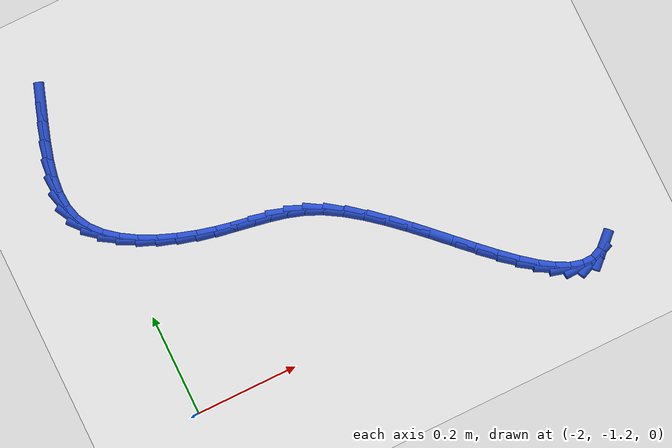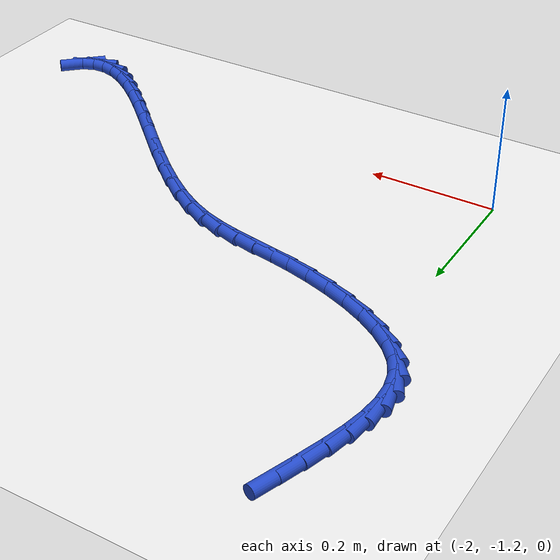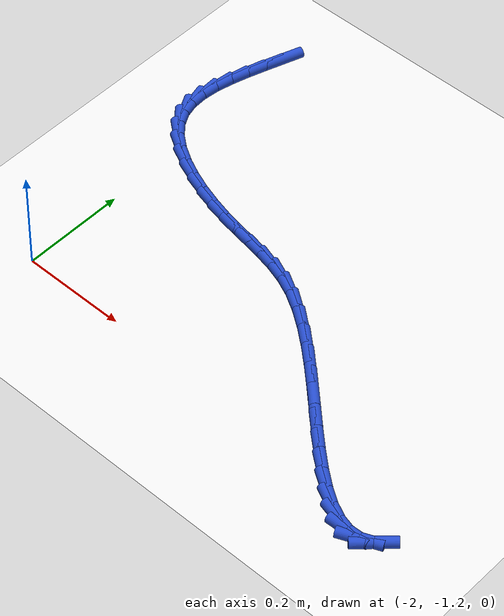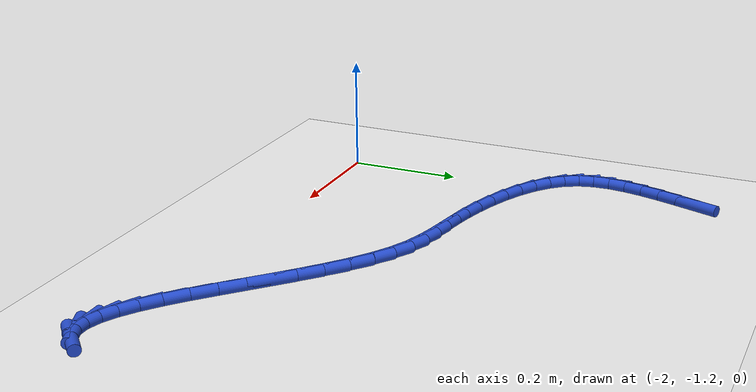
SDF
<sdf version="1.6">
 <world name="default">
  <model name="ground_plane">
   <static>1</static>
   <link name="link">
    <collision name="collision">
     <geometry><plane><normal>0 0 1</normal><size>100 100</size></plane></geometry>
     <surface><friction><ode><mu>100</mu><mu2>50</mu2></ode></friction></surface>
    </collision>
    <visual name="visual">
     <cast_shadows>0</cast_shadows>
     <geometry><plane><normal>0 0 1</normal><size>100 100</size></plane></geometry>
     <material>
      <script><uri>file://media/materials/scripts/gazebo.material</uri><name>Gazebo/WhiteGlow</name></script>
     </material>
    </visual>
   </link>
  </model>
  <model name="line">
   <link name="link_129">
    <pose>-2.015394017061244 -0.5467655982230155 0.01 0 1.57 1.2388100657503465</pose>
    <collision name="collision">
     <geometry><cylinder><radius>0.01</radius><length>0.08</length></cylinder></geometry>
    </collision>
    <visual name="visual">
     <material>
      <script><name>Gazebo/Blue</name><uri>file://media/materials/scripts/gazebo.material</uri></script>
     </material>
     <geometry><cylinder><radius>0.01</radius><length>0.08</length></cylinder></geometry>
    </visual>
   </link>
   <link name="link_130">
    <pose>-2.0276539462757364 -0.582327840274465 0.01 0 1.57 1.2535763853824529</pose>
    <collision name="collision">
     <geometry><cylinder><radius>0.01</radius><length>0.08</length></cylinder></geometry>
    </collision>
    <visual name="visual">
     <material>
      <script><name>Gazebo/Blue</name><uri>file://media/materials/scripts/gazebo.material</uri></script>
     </material>
     <geometry><cylinder><radius>0.01</radius><length>0.08</length></cylinder></geometry>
    </visual>
   </link>
   <link name="link_131">
    <pose>-2.0390904583832477 -0.6171626639142007 0.01 0 1.57 1.2927875573959584</pose>
    <collision name="collision">
     <geometry><cylinder><radius>0.01</radius><length>0.08</length></cylinder></geometry>
    </collision>
    <visual name="visual">
     <material>
      <script><name>Gazebo/Blue</name><uri>file://media/materials/scripts/gazebo.material</uri></script>
     </material>
     <geometry><cylinder><radius>0.01</radius><length>0.08</length></cylinder></geometry>
    </visual>
   </link>
   <link name="link_132">
    <pose>-2.0487517149284566 -0.6510143370321106 0.01 0 1.57 1.361295211416397</pose>
    <collision name="collision">
     <geometry><cylinder><radius>0.01</radius><length>0.08</length></cylinder></geometry>
    </collision>
    <visual name="visual">
     <material>
      <script><name>Gazebo/Blue</name><uri>file://media/materials/scripts/gazebo.material</uri></script>
     </material>
     <geometry><cylinder><radius>0.01</radius><length>0.08</length></cylinder></geometry>
    </visual>
   </link>
   <link name="link_133">
    <pose>-2.055685877456042 -0.6836271275180856 0.01 0 1.57 1.4665667768413608</pose>
    <collision name="collision">
     <geometry><cylinder><radius>0.01</radius><length>0.08</length></cylinder></geometry>
    </collision>
    <visual name="visual">
     <material>
      <script><name>Gazebo/Blue</name><uri>file://media/materials/scripts/gazebo.material</uri></script>
     </material>
     <geometry><cylinder><radius>0.01</radius><length>0.08</length></cylinder></geometry>
    </visual>
   </link>
   <link name="link_134">
    <pose>-2.058941107510682 -0.7147453032620155 0.01 0 1.57 -1.5239921759350812</pose>
    <collision name="collision">
     <geometry><cylinder><radius>0.01</radius><length>0.08</length></cylinder></geometry>
    </collision>
    <visual name="visual">
     <material>
      <script><name>Gazebo/Blue</name><uri>file://media/materials/scripts/gazebo.material</uri></script>
     </material>
     <geometry><cylinder><radius>0.01</radius><length>0.08</length></cylinder></geometry>
    </visual>
   </link>
   <link name="link_135">
    <pose>-2.0575655666370554 -0.744113132153791 0.01 0 1.57 -1.3217727521539409</pose>
    <collision name="collision">
     <geometry><cylinder><radius>0.01</radius><length>0.08</length></cylinder></geometry>
    </collision>
    <visual name="visual">
     <material>
      <script><name>Gazebo/Blue</name><uri>file://media/materials/scripts/gazebo.material</uri></script>
     </material>
     <geometry><cylinder><radius>0.01</radius><length>0.08</length></cylinder></geometry>
    </visual>
   </link>
   <link name="link_136">
    <pose>-2.0506074163798402 -0.7714748820833008 0.01 0 1.57 -1.0790485131635144</pose>
    <collision name="collision">
     <geometry><cylinder><radius>0.01</radius><length>0.08</length></cylinder></geometry>
    </collision>
    <visual name="visual">
     <material>
      <script><name>Gazebo/Blue</name><uri>file://media/materials/scripts/gazebo.material</uri></script>
     </material>
     <geometry><cylinder><radius>0.01</radius><length>0.08</length></cylinder></geometry>
    </visual>
   </link>
   <link name="link_137">
    <pose>-2.037159606729046 -0.7965811610376143 0.01 0 1.57 -0.852919830712147</pose>
    <collision name="collision">
     <geometry><cylinder><radius>0.01</radius><length>0.08</length></cylinder></geometry>
    </collision>
    <visual name="visual">
     <material>
      <script><name>Gazebo/Blue</name><uri>file://media/materials/scripts/gazebo.material</uri></script>
     </material>
     <geometry><cylinder><radius>0.01</radius><length>0.08</length></cylinder></geometry>
    </visual>
   </link>
   <link name="link_138">
    <pose>-2.01729966852689 -0.8193219508587666 0.01 0 1.57 -0.679877926534927</pose>
    <collision name="collision">
     <geometry><cylinder><radius>0.01</radius><length>0.08</length></cylinder></geometry>
    </collision>
    <visual name="visual">
     <material>
      <script><name>Gazebo/Blue</name><uri>file://media/materials/scripts/gazebo.material</uri></script>
     </material>
     <geometry><cylinder><radius>0.01</radius><length>0.08</length></cylinder></geometry>
    </visual>
   </link>
   <link name="link_139">
    <pose>-1.99206505190347 -0.8397231162381376 0.01 0 1.57 -0.5496758269864429</pose>
    <collision name="collision">
     <geometry><cylinder><radius>0.01</radius><length>0.08</length></cylinder></geometry>
    </collision>
    <visual name="visual">
     <material>
      <script><name>Gazebo/Blue</name><uri>file://media/materials/scripts/gazebo.material</uri></script>
     </material>
     <geometry><cylinder><radius>0.01</radius><length>0.08</length></cylinder></geometry>
    </visual>
   </link>
   <link name="link_140">
    <pose>-1.962533062126395 -0.8578161636223183 0.01 0 1.57 -0.4498858314161071</pose>
    <collision name="collision">
     <geometry><cylinder><radius>0.01</radius><length>0.08</length></cylinder></geometry>
    </collision>
    <visual name="visual">
     <material>
      <script><name>Gazebo/Blue</name><uri>file://media/materials/scripts/gazebo.material</uri></script>
     </material>
     <geometry><cylinder><radius>0.01</radius><length>0.08</length></cylinder></geometry>
    </visual>
   </link>
   <link name="link_141">
    <pose>-1.9297810044632704 -0.8736325994579003 0.01 0 1.57 -0.370919239391351</pose>
    <collision name="collision">
     <geometry><cylinder><radius>0.01</radius><length>0.08</length></cylinder></geometry>
    </collision>
    <visual name="visual">
     <material>
      <script><name>Gazebo/Blue</name><uri>file://media/materials/scripts/gazebo.material</uri></script>
     </material>
     <geometry><cylinder><radius>0.01</radius><length>0.08</length></cylinder></geometry>
    </visual>
   </link>
   <link name="link_142">
    <pose>-1.894886184181705 -0.8872039301914757 0.01 0 1.57 -0.30592577595828996</pose>
    <collision name="collision">
     <geometry><cylinder><radius>0.01</radius><length>0.08</length></cylinder></geometry>
    </collision>
    <visual name="visual">
     <material>
      <script><name>Gazebo/Blue</name><uri>file://media/materials/scripts/gazebo.material</uri></script>
     </material>
     <geometry><cylinder><radius>0.01</radius><length>0.08</length></cylinder></geometry>
    </visual>
   </link>
   <link name="link_143">
    <pose>-1.858925906549305 -0.8985616622696361 0.01 0 1.57 -0.24990856319659605</pose>
    <collision name="collision">
     <geometry><cylinder><radius>0.01</radius><length>0.08</length></cylinder></geometry>
    </collision>
    <visual name="visual">
     <material>
      <script><name>Gazebo/Blue</name><uri>file://media/materials/scripts/gazebo.material</uri></script>
     </material>
     <geometry><cylinder><radius>0.01</radius><length>0.08</length></cylinder></geometry>
    </visual>
   </link>
   <link name="link_144">
    <pose>-1.82297747683368 -0.9077373021389733 0.01 0 1.57 -0.2001688125739031</pose>
    <collision name="collision">
     <geometry><cylinder><radius>0.01</radius><length>0.08</length></cylinder></geometry>
    </collision>
    <visual name="visual">
     <material>
      <script><name>Gazebo/Blue</name><uri>file://media/materials/scripts/gazebo.material</uri></script>
     </material>
     <geometry><cylinder><radius>0.01</radius><length>0.08</length></cylinder></geometry>
    </visual>
   </link>
   <link name="link_145">
    <pose>-1.7880538158559753 -0.9148228167153437 0.01 0 1.57 -0.171678112381296</pose>
    <collision name="collision">
     <geometry><cylinder><radius>0.01</radius><length>0.08</length></cylinder></geometry>
    </collision>
    <visual name="visual">
     <material>
      <script><name>Gazebo/Blue</name><uri>file://media/materials/scripts/gazebo.material</uri></script>
     </material>
     <geometry><cylinder><radius>0.01</radius><length>0.08</length></cylinder></geometry>
    </visual>
   </link>
   <link name="link_146">
    <pose>-1.754365181679546 -0.9206639165540295 0.01 0 1.57 -0.1796323500471926</pose>
    <collision name="collision">
     <geometry><cylinder><radius>0.01</radius><length>0.08</length></cylinder></geometry>
    </collision>
    <visual name="visual">
     <material>
      <script><name>Gazebo/Blue</name><uri>file://media/materials/scripts/gazebo.material</uri></script>
     </material>
     <geometry><cylinder><radius>0.01</radius><length>0.08</length></cylinder></geometry>
    </visual>
   </link>
   <link name="link_147">
    <pose>-1.7215770337601377 -0.9266179074989516 0.01 0 1.57 -0.22667044608490852</pose>
    <collision name="collision">
     <geometry><cylinder><radius>0.01</radius><length>0.08</length></cylinder></geometry>
    </collision>
    <visual name="visual">
     <material>
      <script><name>Gazebo/Blue</name><uri>file://media/materials/scripts/gazebo.material</uri></script>
     </material>
     <geometry><cylinder><radius>0.01</radius><length>0.08</length></cylinder></geometry>
    </visual>
   </link>
   <link name="link_148">
    <pose>-1.6893444601318697 -0.9340518347185568 0.01 0 1.57 -0.3106628795604437</pose>
    <collision name="collision">
     <geometry><cylinder><radius>0.01</radius><length>0.08</length></cylinder></geometry>
    </collision>
    <visual name="visual">
     <material>
      <script><name>Gazebo/Blue</name><uri>file://media/materials/scripts/gazebo.material</uri></script>
     </material>
     <geometry><cylinder><radius>0.01</radius><length>0.08</length></cylinder></geometry>
    </visual>
   </link>
   <link name="link_149">
    <pose>-1.6573225488288623 -0.944332743381291 0.01 0 1.57 -0.4234268595129013</pose>
    <collision name="collision">
     <geometry><cylinder><radius>0.01</radius><length>0.08</length></cylinder></geometry>
    </collision>
    <visual name="visual">
     <material>
      <script><name>Gazebo/Blue</name><uri>file://media/materials/scripts/gazebo.material</uri></script>
     </material>
     <geometry><cylinder><radius>0.01</radius><length>0.08</length></cylinder></geometry>
    </visual>
   </link>
   <link name="link_150">
    <pose>-1.625166995280515 -0.9588249018390486 0.01 0 1.57 -0.5387557036182694</pose>
    <collision name="collision">
     <geometry><cylinder><radius>0.01</radius><length>0.08</length></cylinder></geometry>
    </collision>
    <visual name="visual">
     <material>
      <script><name>Gazebo/Blue</name><uri>file://media/materials/scripts/gazebo.material</uri></script>
     </material>
     <geometry><cylinder><radius>0.01</radius><length>0.08</length></cylinder></geometry>
    </visual>
   </link>
   <link name="link_151">
    <pose>-1.5926747513777268 -0.9782467991736553 0.01 0 1.57 -0.6250024165375869</pose>
    <collision name="collision">
     <geometry><cylinder><radius>0.01</radius><length>0.08</length></cylinder></geometry>
    </collision>
    <visual name="visual">
     <material>
      <script><name>Gazebo/Blue</name><uri>file://media/materials/scripts/gazebo.material</uri></script>
     </material>
     <geometry><cylinder><radius>0.01</radius><length>0.08</length></cylinder></geometry>
    </visual>
   </link>
   <link name="link_152">
    <pose>-1.559964296556695 -1.0018470035776303 0.01 0 1.57 -0.686009488860732</pose>
    <collision name="collision">
     <geometry><cylinder><radius>0.01</radius><length>0.08</length></cylinder></geometry>
    </collision>
    <visual name="visual">
     <material>
      <script><name>Gazebo/Blue</name><uri>file://media/materials/scripts/gazebo.material</uri></script>
     </material>
     <geometry><cylinder><radius>0.01</radius><length>0.08</length></cylinder></geometry>
    </visual>
   </link>
   <link name="link_153">
    <pose>-1.5271986190208058 -1.0286706034247257 0.01 0 1.57 -0.7277160099524845</pose>
    <collision name="collision">
     <geometry><cylinder><radius>0.01</radius><length>0.08</length></cylinder></geometry>
    </collision>
    <visual name="visual">
     <material>
      <script><name>Gazebo/Blue</name><uri>file://media/materials/scripts/gazebo.material</uri></script>
     </material>
     <geometry><cylinder><radius>0.01</radius><length>0.08</length></cylinder></geometry>
    </visual>
   </link>
   <link name="link_154">
    <pose>-1.4945407069734424 -1.0577626870886943 0.01 0 1.57 -0.7538524332699768</pose>
    <collision name="collision">
     <geometry><cylinder><radius>0.01</radius><length>0.08</length></cylinder></geometry>
    </collision>
    <visual name="visual">
     <material>
      <script><name>Gazebo/Blue</name><uri>file://media/materials/scripts/gazebo.material</uri></script>
     </material>
     <geometry><cylinder><radius>0.01</radius><length>0.08</length></cylinder></geometry>
    </visual>
   </link>
   <link name="link_155">
    <pose>-1.4621535486179889 -1.0881683429432882 0.01 0 1.57 -0.7664408838920721</pose>
    <collision name="collision">
     <geometry><cylinder><radius>0.01</radius><length>0.08</length></cylinder></geometry>
    </collision>
    <visual name="visual">
     <material>
      <script><name>Gazebo/Blue</name><uri>file://media/materials/scripts/gazebo.material</uri></script>
     </material>
     <geometry><cylinder><radius>0.01</radius><length>0.08</length></cylinder></geometry>
    </visual>
   </link>
   <link name="link_156">
    <pose>-1.4302001321578288 -1.1189326593622604 0.01 0 1.57 -0.7660811710591149</pose>
    <collision name="collision">
     <geometry><cylinder><radius>0.01</radius><length>0.08</length></cylinder></geometry>
    </collision>
    <visual name="visual">
     <material>
      <script><name>Gazebo/Blue</name><uri>file://media/materials/scripts/gazebo.material</uri></script>
     </material>
     <geometry><cylinder><radius>0.01</radius><length>0.08</length></cylinder></geometry>
    </visual>
   </link>
   <link name="link_157">
    <pose>-1.3988434457963488 -1.1491007247193625 0.01 0 1.57 -0.7519714031314978</pose>
    <collision name="collision">
     <geometry><cylinder><radius>0.01</radius><length>0.08</length></cylinder></geometry>
    </collision>
    <visual name="visual">
     <material>
      <script><name>Gazebo/Blue</name><uri>file://media/materials/scripts/gazebo.material</uri></script>
     </material>
     <geometry><cylinder><radius>0.01</radius><length>0.08</length></cylinder></geometry>
    </visual>
   </link>
   <link name="link_158">
    <pose>-1.3682464777369319 -1.177717627388348 0.01 0 1.57 -0.7216069548132437</pose>
    <collision name="collision">
     <geometry><cylinder><radius>0.01</radius><length>0.08</length></cylinder></geometry>
    </collision>
    <visual name="visual">
     <material>
      <script><name>Gazebo/Blue</name><uri>file://media/materials/scripts/gazebo.material</uri></script>
     </material>
     <geometry><cylinder><radius>0.01</radius><length>0.08</length></cylinder></geometry>
    </visual>
   </link>
   <link name="link_159">
    <pose>-1.3385722161829625 -1.2038284557429686 0.01 0 1.57 -0.6700092618455692</pose>
    <collision name="collision">
     <geometry><cylinder><radius>0.01</radius><length>0.08</length></cylinder></geometry>
    </collision>
    <visual name="visual">
     <material>
      <script><name>Gazebo/Blue</name><uri>file://media/materials/scripts/gazebo.material</uri></script>
     </material>
     <geometry><cylinder><radius>0.01</radius><length>0.08</length></cylinder></geometry>
    </visual>
   </link>
   <link name="link_160">
    <pose>-1.3099836493378247 -1.226478298156978 0.01 0 1.57 -0.5881888397971498</pose>
    <collision name="collision">
     <geometry><cylinder><radius>0.01</radius><length>0.08</length></cylinder></geometry>
    </collision>
    <visual name="visual">
     <material>
      <script><name>Gazebo/Blue</name><uri>file://media/materials/scripts/gazebo.material</uri></script>
     </material>
     <geometry><cylinder><radius>0.01</radius><length>0.08</length></cylinder></geometry>
    </visual>
   </link>
   <link name="link_161">
    <pose>-1.2826437654049039 -1.2447122430041269 0.01 0 1.57 -0.4605273645206094</pose>
    <collision name="collision">
     <geometry><cylinder><radius>0.01</radius><length>0.08</length></cylinder></geometry>
    </collision>
    <visual name="visual">
     <material>
      <script><name>Gazebo/Blue</name><uri>file://media/materials/scripts/gazebo.material</uri></script>
     </material>
     <geometry><cylinder><radius>0.01</radius><length>0.08</length></cylinder></geometry>
    </visual>
   </link>
   <link name="link_162">
    <pose>-1.2567155525875842 -1.2575753786581694 0.01 0 1.57 -0.2622552287441288</pose>
    <collision name="collision">
     <geometry><cylinder><radius>0.01</radius><length>0.08</length></cylinder></geometry>
    </collision>
    <visual name="visual">
     <material>
      <script><name>Gazebo/Blue</name><uri>file://media/materials/scripts/gazebo.material</uri></script>
     </material>
     <geometry><cylinder><radius>0.01</radius><length>0.08</length></cylinder></geometry>
    </visual>
   </link>
   <link name="link_163">
    <pose>-1.2323619990892491 -1.2641127934928567 0.01 0 1.57 0.03285078381384795</pose>
    <collision name="collision">
     <geometry><cylinder><radius>0.01</radius><length>0.08</length></cylinder></geometry>
    </collision>
    <visual name="visual">
     <material>
      <script><name>Gazebo/Blue</name><uri>file://media/materials/scripts/gazebo.material</uri></script>
     </material>
     <geometry><cylinder><radius>0.01</radius><length>0.08</length></cylinder></geometry>
    </visual>
   </link>
   <link name="link_164">
    <pose>-1.209746093113284 -1.2633695758819425 0.01 0 1.57 0.4089949852744248</pose>
    <collision name="collision">
     <geometry><cylinder><radius>0.01</radius><length>0.08</length></cylinder></geometry>
    </collision>
    <visual name="visual">
     <material>
      <script><name>Gazebo/Blue</name><uri>file://media/materials/scripts/gazebo.material</uri></script>
     </material>
     <geometry><cylinder><radius>0.01</radius><length>0.08</length></cylinder></geometry>
    </visual>
   </link>
   <link name="link_165">
    <pose>-1.189030822863072 -1.2543908141991782 0.01 0 1.57 0.7715190599765931</pose>
    <collision name="collision">
     <geometry><cylinder><radius>0.01</radius><length>0.08</length></cylinder></geometry>
    </collision>
    <visual name="visual">
     <material>
      <script><name>Gazebo/Blue</name><uri>file://media/materials/scripts/gazebo.material</uri></script>
     </material>
     <geometry><cylinder><radius>0.01</radius><length>0.08</length></cylinder></geometry>
    </visual>
   </link>
  </model>
 </world>
</sdf>
